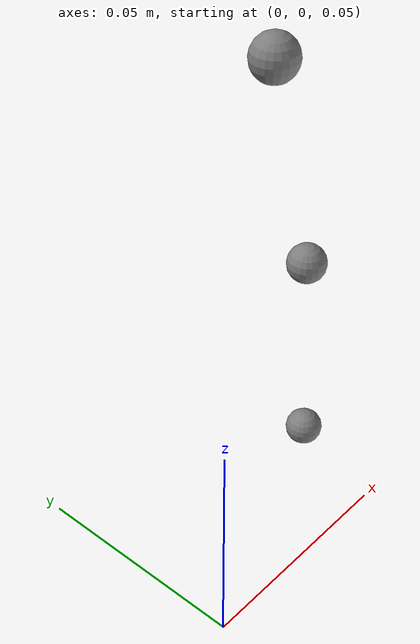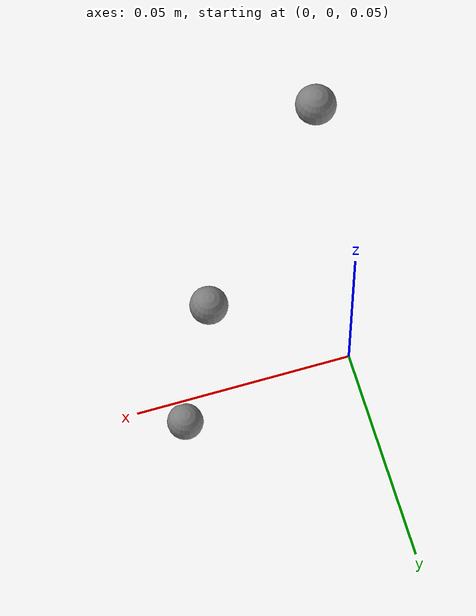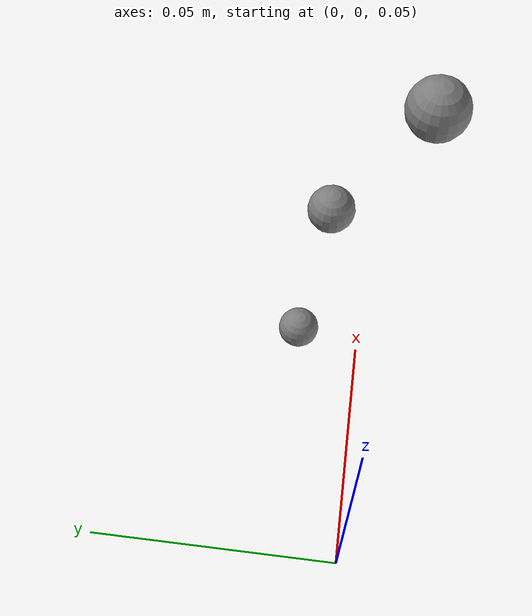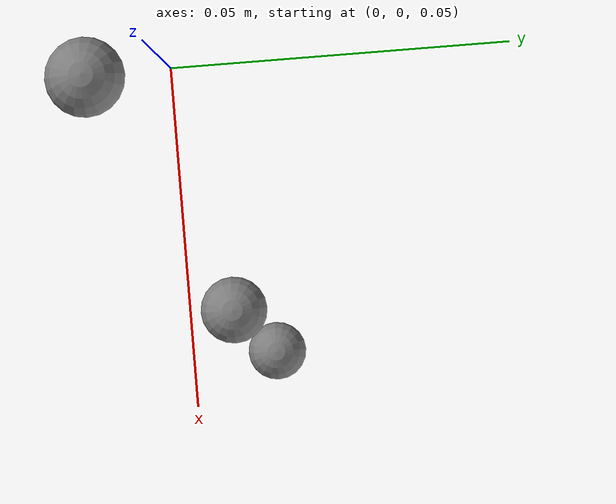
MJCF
<mujoco>
  <option gravity="0 0 -9.81" timestep="0.001"/>
  <worldbody>
<body name="upper" pos="0 0 0.2">
  <joint type="hinge" axis="0 1 0"/>
  <geom type="sphere" pos="0.01 0 -0.025" size="0.004" mass="0.3"/>
  <body name="mid" pos="0.02 0 -0.05">
    <joint type="hinge" axis="1 0.3 0"/>
    <geom type="sphere" pos="0.015 0.01 -0.03" size="0.004" mass="0.35"/>
    <body name="lower" pos="0.01 0.005 -0.05">
      <joint type="hinge" axis="0.2 1 0.1"/>
      <geom type="sphere" pos="0.012 0.008 -0.03" size="0.004" mass="0.4"/>
    </body>
  </body>
</body>
  </worldbody>
</mujoco>
